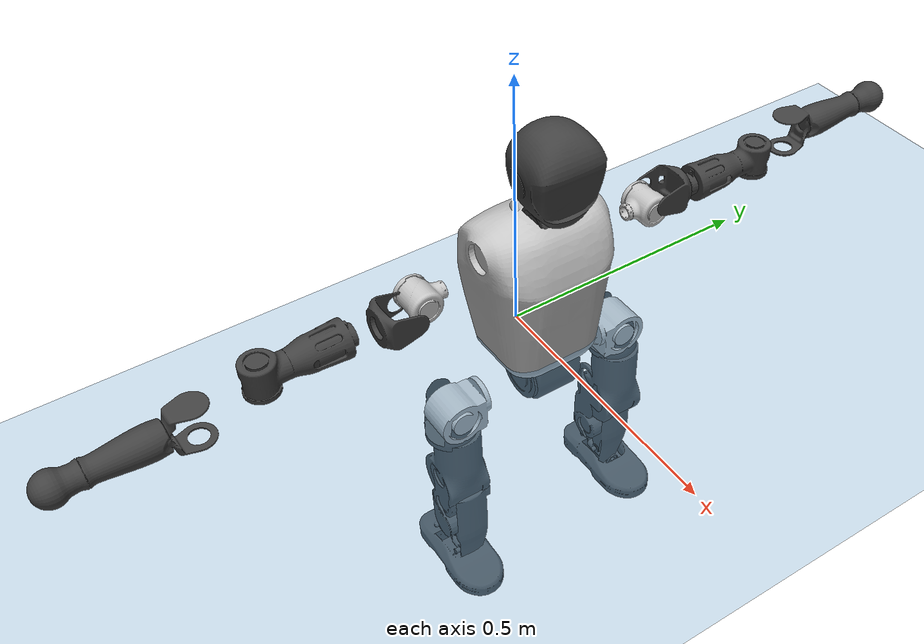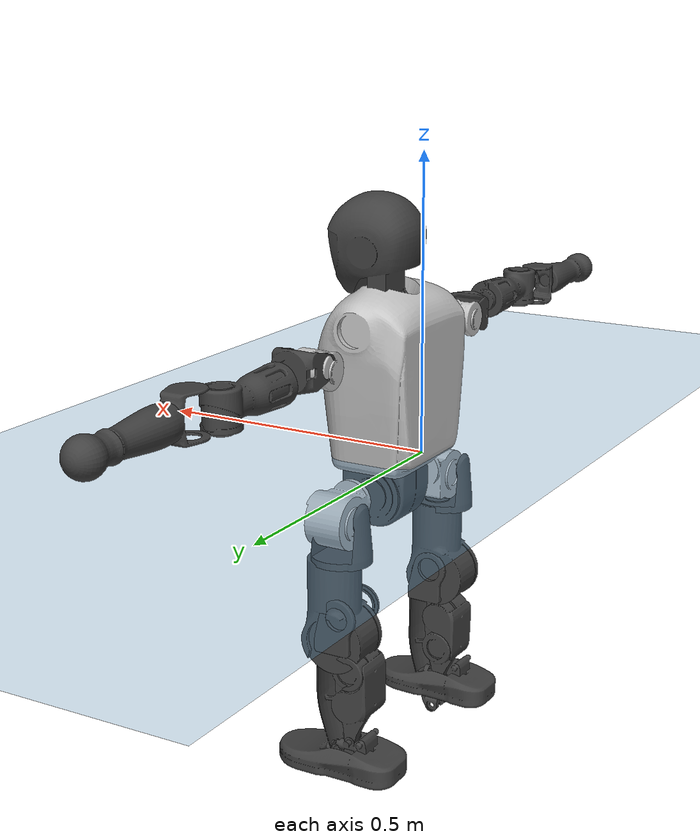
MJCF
<mujoco model="T1">
  <compiler angle="radian" assetdir="assets" balanceinertia="true" inertiafromgeom="false"/>

  <option timestep="0.005" density="1.2" viscosity="2e-05"/>

  <size nkey="1"/>

  <visual>
    <quality shadowsize="8192"/>
    <map shadowclip="0.5"/>
  </visual>

  <default>
    <default class="/">
      <joint armature="0.01" damping="0.01" frictionloss="0.1"/>
      <geom contype="0" conaffinity="0" group="1" solref="-1000 -80"/>
      <site size="0.01 0.005 0.005" group="5"/>
      <general forcelimited="true" biastype="affine" gainprm="25" biasprm="0 -25 -0.6"/>
      <default class="t1">
        <geom rgba="0.25 0.25 0.25 1"/>
        <default class="visual">
          <geom type="mesh" group="2"/>
        </default>
        <default class="collision">
          <geom group="3"/>
        </default>
        <default class="foot">
          <geom size="0.1115 0.05 0.015" type="box" condim="6" group="4" priority="1" solimp="0.015 1 0.015"/>
        </default>
        <default class="reward_collision_sphere">
          <geom group="5" rgba="1 0 0 1"/>
        </default>
      </default>
    </default>
  </default>

  <asset>
    <texture type="skybox" colorspace="auto" name="//unnamed_texture_0" builtin="gradient" rgb1="0.95 0.95 0.95" rgb2="0.95 0.95 0.95" width="100" height="600"/>
    <texture type="2d" colorspace="auto" name="texplane" builtin="checker" rgb1="0.345 0.575 0.748" rgb2="0.345 0.575 0.748" markrgb="1 1 1" width="512" height="512"/>
    <material name="MatPlane" class="/" texture="texplane" texuniform="true" texrepeat="2 2" specular="0.9"/>
    <mesh name="Trunk" class="/" file="Trunk.stl"/>
    <mesh name="H1" class="/" file="H1.stl"/>
    <mesh name="H2" class="/" file="H2.stl"/>
    <mesh name="AL1" class="/" file="AL1.stl"/>
    <mesh name="AL2" class="/" file="AL2.stl"/>
    <mesh name="AL3" class="/" file="AL3.stl"/>
    <mesh name="left_hand_link" class="/" file="left_hand_link.stl"/>
    <mesh name="AR1" class="/" file="AR1.stl"/>
    <mesh name="AR2" class="/" file="AR2.stl"/>
    <mesh name="AR3" class="/" file="AR3.stl"/>
    <mesh name="right_hand_link" class="/" file="right_hand_link.stl"/>
    <mesh name="Waist" class="/" file="Waist.stl"/>
    <mesh name="Hip_Pitch_Left" class="/" file="Hip_Pitch_Left.stl"/>
    <mesh name="Hip_Roll_Left" class="/" file="Hip_Roll_Left.stl"/>
    <mesh name="Hip_Yaw_Left" class="/" file="Hip_Yaw_Left.stl"/>
    <mesh name="Shank_Left" class="/" file="Shank_Left.stl"/>
    <mesh name="Ankle_Cross_Left" class="/" file="Ankle_Cross_Left.stl"/>
    <mesh name="left_foot_link" class="/" file="left_foot_link.stl"/>
    <mesh name="Hip_Pitch_Right" class="/" file="Hip_Pitch_Right.stl"/>
    <mesh name="Hip_Roll_Right" class="/" file="Hip_Roll_Right.stl"/>
    <mesh name="Hip_Yaw_Right" class="/" file="Hip_Yaw_Right.stl"/>
    <mesh name="Shank_Right" class="/" file="Shank_Right.stl"/>
    <mesh name="Ankle_Cross_Right" class="/" file="Ankle_Cross_Right.stl"/>
    <mesh name="right_foot_link" class="/" file="right_foot_link.stl"/>
  </asset>

  <worldbody>
    <geom name="floor" class="/" size="100 100 0.125" type="plane" group="0" material="MatPlane"/>
    <light name="toplight_shadow" class="/" pos="0 0 5" dir="0.0990148 0.0990148 -0.990148" type="directional" ambient="0.04 0.04 0.04" diffuse="0.55 0.55 0.55" specular="0.12 0.12 0.12"/>
    <light name="toplight_fill" class="/" pos="0 0 5" dir="0.0990148 0.0990148 -0.990148" type="directional" castshadow="false" ambient="0.04 0.04 0.04" diffuse="0.3 0.3 0.3" specular="0.08 0.08 0.08"/>
    <body name="trunk" childclass="t1" pos="0.000492081 0.00791523 0.00743289" quat="1 0.000265919 0.000478715 0.000737379">
      <inertial pos="0.0329372 -0.0171271 0.0678344" quat="0.99827 -0.03791 -0.0124493 0.043188" mass="16.801" diaginertia="0.0340701 1.23508 0.0202304"/>
      <joint name="//unnamed_joint_0" type="free" armature="0" damping="0" frictionloss="0"/>
      <geom name="//unnamed_geom_1" class="visual" rgba="0.76 0.76 0.76 1" mesh="Trunk"/>
      <geom name="//unnamed_geom_2" class="collision" size="0.0822848 0.109713 0.16457" pos="0.048183 0 0.0944304" type="box"/>
      <geom name="//unnamed_geom_3" class="reward_collision_sphere" size="0.12617" pos="0.048183 0 0.078692"/>
      <geom name="//unnamed_geom_4" class="reward_collision_sphere" size="0.016457" pos="0.048183 0.144621 0"/>
      <geom name="//unnamed_geom_5" class="reward_collision_sphere" size="0.016457" pos="0.048183 -0.144621 0"/>
      <geom name="//unnamed_geom_6" class="reward_collision_sphere" size="0.016457" pos="0.048183 0.182052 0.141646"/>
      <geom name="//unnamed_geom_7" class="reward_collision_sphere" size="0.016457" pos="0.048183 -0.182052 0.141646"/>
      <site name="imu" pos="0.0520693 0.0465827 -0.031851" size="0.0109713"/>
      <camera name="track" pos="0 -3.40284 0" quat="0.707107 0.707107 0 0" mode="trackcom"/>
      <camera name="ego_camera" pos="0.0979721 0 0.330506" quat="-0.5 -0.5 0.5 0.5"/>
      <body name="H1" pos="0.0576517 0.0140875 0.176424" quat="1 5.09191e-06 -4.24309e-05 -0.000322494">
        <inertial pos="-0.00107861 -0.0196005 0.0503452" quat="0.801462 -0.05106 -0.00340795 0.595852" mass="0.702817" diaginertia="8.38317e-05 0.0038459 4.3039e-05"/>
        <joint name="AAHead_yaw" pos="0 0 0" axis="-0.0404579 0.00998126 0.999131" stiffness="0.0210228" range="-1.55538 1.87443" armature="0.0117453" damping="0" frictionloss="0.206637"/>
        <geom name="//unnamed_geom_8" class="visual" mesh="H1"/>
        <body name="H2" pos="-0.006302 0.00765371 0.0624452" quat="0.999999 -0.00120238 -0.000234441 0.000318689">
          <inertial pos="0.0132329 0.0175391 0.085341" quat="0.991376 0.0320734 -0.0748011 -0.102713" mass="0.808792" diaginertia="0.000679915 0.0267138 0.000425197"/>
          <joint name="Head_pitch" pos="0 0 0" axis="-0.0281362 -0.999559 -0.00946527" range="-1.16995 0.352777" armature="0.0111293" damping="0.00267818" frictionloss="0.172282"/>
          <geom name="//unnamed_geom_9" class="visual" mesh="H2"/>
          <geom name="//unnamed_geom_10" class="collision" size="0.0877704" pos="0.0080305 0 0.0865612"/>
          <geom name="//unnamed_geom_11" class="reward_collision_sphere" size="0.0987417" pos="0.016061 0 0.078692"/>
        </body>
      </body>
      <body name="AL1" pos="0.0580616 0.180807 0.182287" quat="0.999972 -0.00673719 -0.000866664 0.00311902">
        <inertial pos="-0.00152166 0.0855834 0.00835003" quat="0.539041 0.528395 -0.443053 0.483671" mass="0.715367" diaginertia="0.00040967 0.0147901 8.43232e-05"/>
        <joint name="Left_Shoulder_Pitch" pos="0 0 0" axis="0.0131061 0.999908 0.00345347" range="-3.41919 0.939938" armature="0.0115564" damping="0.0371519" frictionloss="0.107413"/>
        <geom name="//unnamed_geom_12" class="visual" rgba="0.76 0.76 0.76 1" mesh="AL1"/>
        <body name="AL2" pos="0.00155053 0.0662173 0.0117701" quat="0.999982 0.00481288 0.00195011 -0.0029144">
          <inertial pos="-0.0122782 0.0476783 -0.0102459" quat="0.46296 0.536516 -0.540924 0.453012" mass="0.18005" diaginertia="0.000125726 0.00475702 4.1491e-05"/>
          <joint name="Left_Shoulder_Roll" pos="0 0 0" axis="-0.999988 0.00131538 0.0047027" range="-1.5644 1.75562" armature="0.00837878" damping="0.00857742" frictionloss="0.140383"/>
          <geom name="//unnamed_geom_13" class="visual" mesh="AL2"/>
          <body name="AL3" pos="-0.00138313 0.0854945 -0.00973053" quat="1 -0.000566313 0.000328854 -2.82526e-05">
            <inertial pos="0.0159523 0.142444 0.0106401" quat="0.710122 0.701747 -0.00558766 -0.0569778" mass="0.939578" diaginertia="0.00385579 0.141251 0.000142166"/>
            <joint name="Left_Elbow_Pitch" pos="0 0 0" axis="0.0272133 -0.99891 -0.0379163" range="-2.37165 1.95704" armature="0.0128662" damping="0" frictionloss="0.119277"/>
            <geom name="//unnamed_geom_14" class="visual" mesh="AL3"/>
            <geom name="//unnamed_geom_15" class="collision" size="0.0329139 0.0822848" pos="0 0.085071 0" quat="0.707105 0.707108 0 0" type="cylinder"/>
            <geom name="//unnamed_geom_16" class="reward_collision_sphere" size="0.0394967"/>
            <body name="left_hand_link" pos="-0.00904523 0.234729 0.0164509" quat="0.999997 -0.00153951 -0.00129883 0.00130501">
              <inertial pos="-0.00351111 0.19043 -0.00262006" quat="0.700685 0.712736 -0.00340344 0.0321935" mass="0.409416" diaginertia="0.00321689 0.119919 6.8972e-05"/>
              <joint name="Left_Elbow_Yaw" pos="0 0 0" axis="0.0109508 -0.0367186 0.999266" range="-2.13023 0.0636206" armature="0.0103851" damping="0.096041" frictionloss="0.0371497"/>
              <geom name="//unnamed_geom_17" class="visual" mesh="left_hand_link"/>
              <geom name="//unnamed_geom_18" class="collision" size="0.0329139 0.0959989" pos="0 0.221185 0" quat="0.707105 0.707108 0 0" type="cylinder"/>
              <geom name="//unnamed_geom_19" class="reward_collision_sphere" size="0.0548565"/>
              <geom name="//unnamed_geom_20" class="reward_collision_sphere" size="0.0383996" pos="0 0.187156 0"/>
              <geom name="//unnamed_geom_21" class="reward_collision_sphere" size="0.0383996" pos="0 0.365805 0"/>
            </body>
          </body>
        </body>
      </body>
      <body name="AR1" pos="0.0442579 -0.179852 0.175707" quat="0.999987 0.00124454 -0.00471621 0.00172321">
        <inertial pos="0.0103009 -0.0776514 0.0157919" quat="0.563357 0.490395 -0.454435 0.485418" mass="0.515931" diaginertia="0.000406088 0.0145837 6.72732e-05"/>
        <joint name="Right_Shoulder_Pitch" pos="0 0 0" axis="-0.0386177 -0.998866 -0.027842" stiffness="0.00153137" range="-1.20473 3.3354" armature="0.00799319" damping="0.0813499" frictionloss="0.199079"/>
        <geom name="//unnamed_geom_22" class="visual" rgba="0.76 0.76 0.76 1" mesh="AR1"/>
        <body name="AR2" pos="0.0157418 -0.0786338 -0.00432553" quat="1 -3.34932e-05 0.000181987 -0.000116361">
          <inertial pos="0.0135959 -0.0474033 -0.00474396" quat="0.467278 0.511221 -0.479531 0.538845" mass="0.182852" diaginertia="0.000104913 0.00420567 4.1412e-05"/>
          <joint name="Right_Shoulder_Roll" pos="0 0 0" axis="-0.998355 -0.00551599 0.0570748" stiffness="0.00515622" range="-1.70429 1.60578" armature="0.0104673" damping="0.0960834" frictionloss="0.0745757"/>
          <geom name="//unnamed_geom_23" class="visual" mesh="AR2"/>
          <body name="AR3" pos="-0.00143696 -0.108589 0.00824594" quat="0.999985 0.00260556 0.00295937 0.00379242">
            <inertial pos="-0.006924 -0.141335 0.00611463" quat="0.725112 0.686791 -0.0328768 0.0380772" mass="1.17262" diaginertia="0.00375955 0.191295 0.000177929"/>
            <joint name="Right_Elbow_Pitch" pos="0 0 0" axis="-0.0337281 0.999254 0.0188179" range="-2.18351 2.12462" armature="0.0108049" damping="0.00474317" frictionloss="0.0804244"/>
            <geom name="//unnamed_geom_24" class="visual" mesh="AR3"/>
            <geom name="//unnamed_geom_25" class="collision" size="0.0329139 0.0822848" pos="0 -0.085071 0" quat="0.707105 0.707108 0 0" type="cylinder"/>
            <geom name="//unnamed_geom_26" class="reward_collision_sphere" size="0.0394967"/>
            <body name="right_hand_link" pos="0.0128305 -0.26113 -0.01681" quat="0.999983 0.00503605 0.000400119 -0.00274815">
              <inertial pos="-0.00105518 -0.19837 -0.00757531" quat="0.692041 0.721573 -0.0183521 0.00868208" mass="0.408622" diaginertia="0.00221044 0.0938179 6.31221e-05"/>
              <joint name="Right_Elbow_Yaw" pos="0 0 0" axis="-0.000773634 -0.000287775 1" range="-0.229362 2.46436" armature="0.0125655" damping="0.0167889" frictionloss="0.0226573"/>
              <geom name="//unnamed_geom_27" class="visual" mesh="right_hand_link"/>
              <geom name="//unnamed_geom_28" class="collision" size="0.0329139 0.0959989" pos="0 -0.221185 0" quat="0.707105 0.707108 0 0" type="cylinder"/>
              <geom name="//unnamed_geom_29" class="reward_collision_sphere" size="0.0548565"/>
              <geom name="//unnamed_geom_30" class="reward_collision_sphere" size="0.0383996" pos="0 -0.187156 0"/>
              <geom name="//unnamed_geom_31" class="reward_collision_sphere" size="0.0383996" pos="0 -0.365805 0"/>
            </body>
          </body>
        </body>
      </body>
      <body name="Waist" pos="0.0628833 0.00392446 -0.0755553" quat="0.999993 0.000908178 -0.00117125 -0.00353631">
        <inertial pos="0.0197868 -0.00574712 0.00102886" quat="0.983268 -0.0180622 -0.181238 -0.00320755" mass="4.46996" diaginertia="0.00245983 0.0882941 0.00146323"/>
        <joint name="Waist" pos="0 0 0" axis="0.0363348 0.00699159 0.999315" stiffness="0.0163313" range="-1.36466 1.55259" armature="0.00496664" damping="0" frictionloss="0.111184"/>
        <geom name="//unnamed_geom_32" class="visual" mesh="Waist"/>
        <body name="Hip_Pitch_Left" pos="-0.00458992 0.170297 0.0139743" quat="0.999997 0.00112387 -0.000887335 0.00212003">
          <inertial pos="0.000308369 -0.0257604 -0.0262058" quat="0.968136 0.243142 0.0578692 -0.0156894" mass="1.06491" diaginertia="0.000593954 0.0175183 0.000369814"/>
          <joint name="Left_Hip_Pitch" pos="0 0 0" axis="-0.00559 0.999972 -0.00500925" range="-1.804 1.25768" armature="0.00157318" damping="0" frictionloss="0.0671099"/>
          <geom name="//unnamed_geom_33" class="visual" rgba="0.76 0.76 0.76 1" mesh="Hip_Pitch_Left"/>
          <body name="Hip_Roll_Left" pos="-0.01551 0.00933746 -0.00590514" quat="1 -0.000599989 -0.000129773 0.000707198">
            <inertial pos="0.010615 0.00023851 -0.0515527" quat="0.654973 -0.022575 -0.0455981 0.753937" mass="0.552293" diaginertia="0.000615071 0.0171167 0.00013957"/>
            <joint name="Left_Hip_Roll" pos="0 0 0" axis="-0.997511 0.0656897 0.0256295" range="-1.57232 0.0848584" armature="0.00227137" damping="0.0380402" frictionloss="0.166666"/>
            <geom name="//unnamed_geom_34" class="visual" mesh="Hip_Roll_Left"/>
            <geom name="//unnamed_geom_35" class="reward_collision_sphere" size="0.0603422"/>
            <body name="Hip_Yaw_Left" pos="0.0116515 -0.000308997 -0.0735961" quat="0.999997 -0.00192785 0.000809047 0.00113347">
              <inertial pos="0.00844413 -0.00696533 -0.0647453" quat="0.688192 -0.0265631 -0.046604 0.723543" mass="3.1681" diaginertia="0.00913395 0.441554 0.000830185"/>
              <joint name="Left_Hip_Yaw" pos="0 0 0" axis="-0.0226509 0.0115102 -0.999677" range="-0.795439 0.70645" armature="0.0100908" damping="0.0482149" frictionloss="0.113255"/>
              <geom name="//unnamed_geom_36" class="visual" mesh="Hip_Yaw_Left"/>
              <geom name="//unnamed_geom_37" class="collision" size="0.0548565 0.0877704" type="cylinder"/>
              <body name="Shank_Left" pos="-0.0280523 0.00032403 -0.0875429" quat="0.999999 0.00139748 -0.000702428 0.000587616">
                <inertial pos="0.00100642 -0.0137695 -0.112734" quat="0.99747 0.0042902 -0.0239972 0.0667823" mass="2.86207" diaginertia="0.011855 0.53208 0.000531321"/>
                <joint name="Left_Knee_Pitch" pos="0 0 0" axis="0.0138193 0.999862 0.00917539" range="-0.190353 2.52082" armature="0.011103" damping="0.00538671" frictionloss="0.142145"/>
                <geom name="//unnamed_geom_38" class="visual" mesh="Shank_Left"/>
                <geom name="//unnamed_geom_39" class="collision" size="0.0548565 0.0822848" pos="0 0 -0.0944304" type="cylinder"/>
                <geom name="//unnamed_geom_40" class="reward_collision_sphere" size="0.0713135"/>
                <body name="Ankle_Cross_Left" pos="-0.00423002 -0.000588817 -0.232588" quat="0.999998 -0.00083212 -0.000154704 -0.00176412">
                  <inertial pos="0.00592939 -0.0125665 -0.0164578" quat="0.492943 0.532136 0.554767 0.407518" mass="0.0843406" diaginertia="8.37309e-06 0.00043778 3.61061e-06"/>
                  <joint name="Left_Ankle_Pitch" pos="0 0 0" axis="-0.00205189 0.999979 -0.00617962" range="-1.18294 0.243259" armature="0.0158719" damping="0.0326696" frictionloss="0.0711655"/>
                  <geom name="//unnamed_geom_41" class="visual" mesh="Ankle_Cross_Left"/>
                  <body name="left_foot_link" pos="0.0055106 0.0118918 -0.0156777" quat="0.999989 -0.00377288 0.00254978 0.000899254">
                    <inertial pos="0.0126866 8.12393e-05 0.00658585" quat="-0.00933063 0.642041 0.0199251 0.766354" mass="1.02789" diaginertia="0.00126427 0.0348853 0.000608972"/>
                    <joint name="Left_Ankle_Roll" pos="0 0 0" axis="-0.999842 -0.00612732 -0.0166826" range="-0.450168 0.432215" armature="0.011319" damping="0.0367262" frictionloss="0.113219"/>
                    <geom name="//unnamed_geom_42" class="visual" mesh="left_foot_link"/>
                    <geom name="left_foot" class="foot" size="0.0766949 0.0228588 0.0161214" pos="0.0080305 0 -0.0118038"/>
                    <geom name="//unnamed_geom_44" class="reward_collision_sphere" size="0.0570508" pos="0.0080305 0 -0.0118038"/>
                    <geom name="//unnamed_geom_45" class="reward_collision_sphere" size="0.0329139" pos="0.0762897 -0.0391327 -0.0118038"/>
                    <geom name="//unnamed_geom_46" class="reward_collision_sphere" size="0.0329139" pos="-0.0562135 -0.0391327 -0.0118038"/>
                    <site name="left_foot" class="foot" pos="0.0080305 0 -0.0118038" size="0.0109713"/>
                  </body>
                </body>
              </body>
            </body>
          </body>
        </body>
        <body name="Hip_Pitch_Right" pos="0.00339106 -0.187396 -0.00642033" quat="0.999971 0.00691798 0.0012555 0.00295804">
          <inertial pos="0.0139049 0.0199847 -0.0287771" quat="0.975905 -0.215376 0.00623779 -0.0344151" mass="1.1428" diaginertia="0.00050913 0.0191828 0.000390913"/>
          <joint name="Right_Hip_Pitch" pos="0 0 0" axis="0.00678955 -0.999707 -0.0232445" range="-1.57585 2.13723" armature="0.0174129" damping="0.00234448" frictionloss="0.107778"/>
          <geom name="//unnamed_geom_47" class="visual" rgba="0.76 0.76 0.76 1" mesh="Hip_Pitch_Right"/>
          <body name="Hip_Roll_Right" pos="-0.015976 -0.00167278 -0.00407794" quat="0.999988 -0.00226478 -0.000155841 -0.00427759">
            <inertial pos="0.000352393 -0.00774099 -0.0535262" quat="0.711707 -0.0442235 0.066136 0.697957" mass="0.536563" diaginertia="0.000583776 0.0170604 0.000149919"/>
            <joint name="Right_Hip_Roll" pos="0 0 0" axis="-0.999987 0.00404035 -0.00307621" range="-0.548277 1.68552" armature="0.0111671" damping="0.00702543" frictionloss="0.0551178"/>
            <geom name="//unnamed_geom_48" class="visual" mesh="Hip_Roll_Right"/>
            <geom name="//unnamed_geom_49" class="reward_collision_sphere" size="0.0603422"/>
            <body name="Hip_Yaw_Right" pos="0.00842677 0.00606415 -0.0668569" quat="0.999997 -7.76018e-05 -0.0019578 -0.00127458">
              <inertial pos="-0.00647657 0.00989678 -0.0544214" quat="0.736997 -0.0381711 -0.0482174 0.673092" mass="2.44572" diaginertia="0.00763881 0.287336 0.000814581"/>
              <joint name="Right_Hip_Yaw" pos="0 0 0" axis="-0.0110944 -0.0884558 -0.996018" stiffness="0.0176158" range="-1.10292 0.87039" armature="0.00305569" damping="0.084144" frictionloss="0.113235"/>
              <geom name="//unnamed_geom_50" class="visual" mesh="Hip_Yaw_Right"/>
              <geom name="//unnamed_geom_51" class="collision" size="0.0548565 0.0877704" type="cylinder"/>
              <body name="Shank_Right" pos="-0.00856473 0.0024688 -0.11898" quat="0.999986 -0.00122672 -0.00451345 -0.00257739">
                <inertial pos="-0.00539041 -0.000951241 -0.0833163" quat="0.998626 -0.0037631 -0.0419739 -0.0311384" mass="1.85015" diaginertia="0.00995854 0.440928 0.000478783"/>
                <joint name="Right_Knee_Pitch" pos="0 0 0" axis="0.00059425 -0.997719 0.0674948" range="-2.65012 -0.164901" armature="0.00159393" damping="0" frictionloss="0.10798"/>
                <geom name="//unnamed_geom_52" class="visual" mesh="Shank_Right"/>
                <geom name="//unnamed_geom_53" class="collision" size="0.0548565 0.0822848" pos="0 0 -0.0944304" type="cylinder"/>
                <geom name="//unnamed_geom_54" class="reward_collision_sphere" size="0.0713135"/>
                <body name="Ankle_Cross_Right" pos="0.0107696 -0.006945 -0.22386" quat="0.999999 -0.000770368 -0.000613253 0.000340796">
                  <inertial pos="-0.00171799 0.0112758 -0.00672739" quat="0.462249 0.521308 0.568171 0.437888" mass="0.0762017" diaginertia="9.0045e-06 0.00033839 2.67201e-06"/>
                  <joint name="Right_Ankle_Pitch" pos="0 0 0" axis="0.0439504 -0.998834 0.019997" stiffness="0.0694002" range="-0.0637381 1.16092" armature="0.0107805" damping="0" frictionloss="0.141256"/>
                  <geom name="//unnamed_geom_55" class="visual" mesh="Ankle_Cross_Right"/>
                  <body name="right_foot_link" pos="-0.0152737 -0.000757715 -0.00159356" quat="1 -0.00016939 6.58292e-05 -0.000492076">
                    <inertial pos="0.016628 0.00625159 -0.00709748" quat="0.00171127 0.620417 -0.00211686 0.784268" mass="0.878324" diaginertia="0.000880723 0.0383896 0.000615779"/>
                    <joint name="Right_Ankle_Roll" pos="0 0 0" axis="-0.998317 0.0339459 -0.0470206" stiffness="0.0184066" range="-0.11786 0.433599" armature="0.00921571" damping="0.0793718" frictionloss="0.0848658"/>
                    <geom name="//unnamed_geom_56" class="visual" mesh="right_foot_link"/>
                    <geom name="right_foot" class="foot" size="0.102522 0.0698466 0.0211312" pos="0.0080305 0 -0.0118038"/>
                    <geom name="//unnamed_geom_58" class="reward_collision_sphere" size="0.0438852"/>
                    <geom name="//unnamed_geom_59" class="reward_collision_sphere" size="0.0329139" pos="0.0080305 0 -0.0118038"/>
                    <geom name="//unnamed_geom_60" class="reward_collision_sphere" size="0.0329139" pos="0.0762897 0.0391327 -0.0118038"/>
                    <geom name="//unnamed_geom_61" class="reward_collision_sphere" size="0.0329139" pos="-0.0562135 0.0391327 -0.0118038"/>
                    <site name="right_foot" class="foot" pos="0.0080305 0 -0.0118038" size="0.0109713"/>
                  </body>
                </body>
              </body>
            </body>
          </body>
        </body>
      </body>
    </body>
  </worldbody>

  <contact>
    <pair class="/" geom1="floor" geom2="left_foot" name="//unnamed_contact_0"/>
    <pair class="/" geom1="floor" geom2="right_foot" name="//unnamed_contact_1"/>
  </contact>

  <actuator>
    <general name="AAHead_yaw" class="/" joint="AAHead_yaw" forcerange="-5.77579 5.77579" gainprm="36.0873" biasprm="0 -36.0873 -0.716261"/>
    <general name="Head_pitch" class="/" joint="Head_pitch" forcerange="-7.84166 7.84166" gainprm="36.0873" biasprm="0 -36.0873 -0.716261"/>
    <general name="Left_Shoulder_Pitch" class="/" joint="Left_Shoulder_Pitch" forcerange="-27.5169 27.5169" gainprm="36.0873" biasprm="0 -36.0873 -0.716261"/>
    <general name="Left_Shoulder_Roll" class="/" joint="Left_Shoulder_Roll" forcerange="-24.974 24.974" gainprm="36.0873" biasprm="0 -36.0873 -0.716261"/>
    <general name="Left_Elbow_Pitch" class="/" joint="Left_Elbow_Pitch" forcerange="-20.0561 20.0561" gainprm="36.0873" biasprm="0 -36.0873 -0.716261"/>
    <general name="Left_Elbow_Yaw" class="/" joint="Left_Elbow_Yaw" forcerange="-25.1957 25.1957" gainprm="36.0873" biasprm="0 -36.0873 -0.716261"/>
    <general name="Right_Shoulder_Pitch" class="/" joint="Right_Shoulder_Pitch" forcerange="-14.4745 14.4745" gainprm="36.0873" biasprm="0 -36.0873 -0.716261"/>
    <general name="Right_Shoulder_Roll" class="/" joint="Right_Shoulder_Roll" forcerange="-27.2491 27.2491" gainprm="36.0873" biasprm="0 -36.0873 -0.716261"/>
    <general name="Right_Elbow_Pitch" class="/" joint="Right_Elbow_Pitch" forcerange="-8.17642 8.17642" gainprm="36.0873" biasprm="0 -36.0873 -0.716261"/>
    <general name="Right_Elbow_Yaw" class="/" joint="Right_Elbow_Yaw" forcerange="-14.029 14.029" gainprm="36.0873" biasprm="0 -36.0873 -0.716261"/>
    <general name="Waist" class="/" joint="Waist" forcerange="-23.3472 23.3472" gainprm="36.0873" biasprm="0 -36.0873 -0.716261"/>
    <general name="Left_Hip_Pitch" class="/" joint="Left_Hip_Pitch" forcerange="-45.7355 45.7355" gainprm="36.0873" biasprm="0 -36.0873 -0.716261"/>
    <general name="Left_Hip_Roll" class="/" joint="Left_Hip_Roll" forcerange="-16.9312 16.9312" gainprm="36.0873" biasprm="0 -36.0873 -0.716261"/>
    <general name="Left_Hip_Yaw" class="/" joint="Left_Hip_Yaw" forcerange="-49.7797 49.7797" gainprm="36.0873" biasprm="0 -36.0873 -0.716261"/>
    <general name="Left_Knee_Pitch" class="/" joint="Left_Knee_Pitch" forcerange="-54.5612 54.5612" gainprm="36.0873" biasprm="0 -36.0873 -0.716261"/>
    <general name="Left_Ankle_Pitch" class="/" joint="Left_Ankle_Pitch" forcerange="-22.8075 22.8075" gainprm="36.0873" biasprm="0 -36.0873 -0.716261"/>
    <general name="Left_Ankle_Roll" class="/" joint="Left_Ankle_Roll" forcerange="-7.47055 7.47055" gainprm="36.0873" biasprm="0 -36.0873 -0.716261"/>
    <general name="Right_Hip_Pitch" class="/" joint="Right_Hip_Pitch" forcerange="-50.2661 50.2661" gainprm="36.0873" biasprm="0 -36.0873 -0.716261"/>
    <general name="Right_Hip_Roll" class="/" joint="Right_Hip_Roll" forcerange="-31.1703 31.1703" gainprm="36.0873" biasprm="0 -36.0873 -0.716261"/>
    <general name="Right_Hip_Yaw" class="/" joint="Right_Hip_Yaw" forcerange="-12.9588 12.9588" gainprm="36.0873" biasprm="0 -36.0873 -0.716261"/>
    <general name="Right_Knee_Pitch" class="/" joint="Right_Knee_Pitch" forcerange="-64.3181 64.3181" gainprm="36.0873" biasprm="0 -36.0873 -0.716261"/>
    <general name="Right_Ankle_Pitch" class="/" joint="Right_Ankle_Pitch" forcerange="-26.3604 26.3604" gainprm="36.0873" biasprm="0 -36.0873 -0.716261"/>
    <general name="Right_Ankle_Roll" class="/" joint="Right_Ankle_Roll" forcerange="-23.0646 23.0646" gainprm="36.0873" biasprm="0 -36.0873 -0.716261"/>
  </actuator>

  <sensor>
    <gyro site="imu" name="imu_angular_velocity"/>
    <velocimeter site="imu" name="imu_linear_velocity"/>
    <framelinvel objtype="site" objname="left_foot" name="left_foot_global_linear_velocity"/>
    <framelinvel objtype="site" objname="right_foot" name="right_foot_global_linear_velocity"/>
  </sensor>

  <keyframe>
    <key name="home" qpos="0 0 0.6385 1 0 0 0 0 0 0 1.4 0 -0.4 0 -1.4 0 0.4 0 -0.4 0 0 0.8 -0.4 0 0.4 0 0 -0.8 0.4 0"/>
  </keyframe>
</mujoco>
